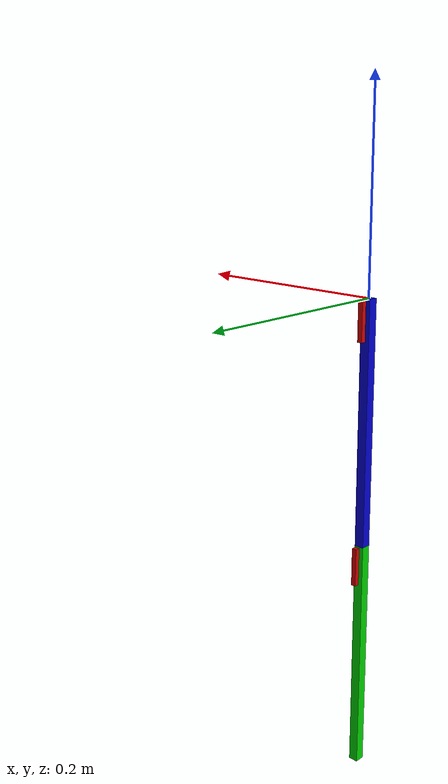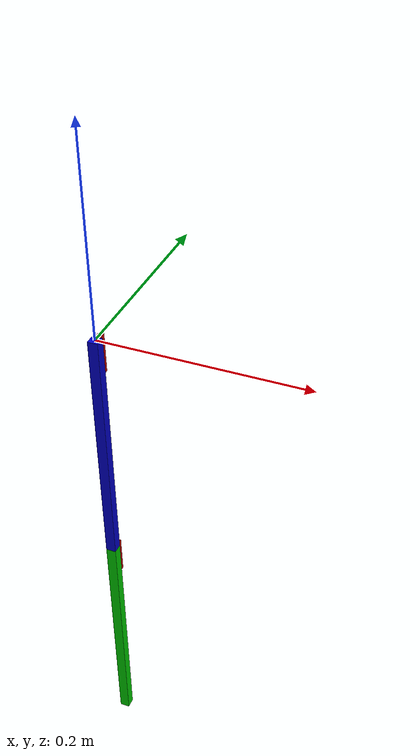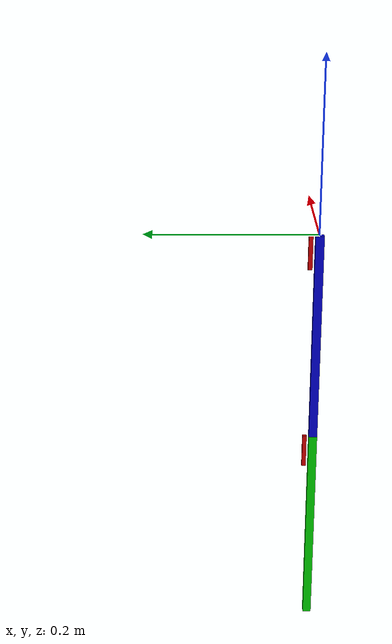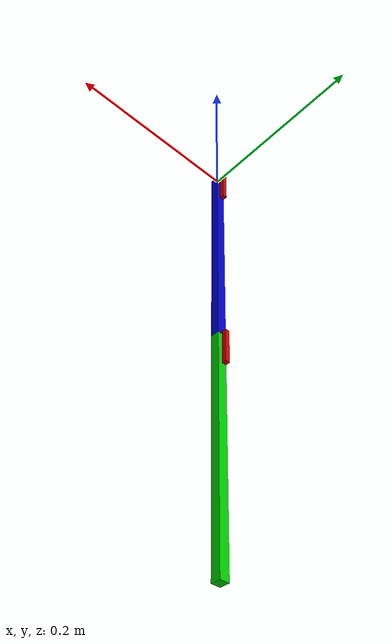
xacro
<?xml version="1.0"?>
<robot name="maccepa" xmlns:xacro="http://www.ros.org/wiki/xacro">

  <xacro:include filename="$(find maccepa_description)/urdf/materials.xacro" />
  <xacro:include filename="$(find maccepa_description)/urdf/link/maccepa_link.urdf.xacro"/>
  <xacro:include filename="$(find maccepa_description)/urdf/camdisk/maccepa_camdisk.urdf.xacro"/>
  <xacro:include filename="$(find maccepa_description)/gazebo/gazebo.urdf.xacro"/>

  <xacro:property name="link_length" value="0.25"/>
  <xacro:property name="link_mass" value="1"/><!-- [kg] -->
  <xacro:property name="camdisk_length" value="0.04"/>

  <link name="world"/>

  <!-- Dummy link holding robot base coordinate frame -->
  <link name="base">
    <inertial>
      <origin xyz="0 0 0" rpy="0 0 0"/>
      <mass value="1"/>
      <inertia ixx="0" ixy="0" ixz="0" iyy="0" iyz="0" izz="0"/>
    </inertial>
  </link>
  <joint name="world_to_base" type="fixed">
    <parent link="world"/>
    <child link="base"/>
    <origin xyz="0 0 0 " rpy="0 ${pi/2} 0" />
  </joint>

  <!-- First Link -->
  <maccepa_link name="arm" length="${link_length}" mass="${link_mass}" material="blue"/>
  <gazebo_blue reference="arm"/>
  <joint name="shoulder" type="revolute">
    <parent link="base"/>
    <child link="arm" />
    <limit
        lower="-10"
        upper="10"
        effort="1000"
        velocity="1000" />
    <origin xyz="0 0 0 " rpy="0 0 0" />
    <axis xyz="0 1 0" />
  </joint>

  <!-- Second Link -->
  <maccepa_link name="forearm" length="${link_length}" mass="${link_mass}" material="green"/>
  <gazebo_red reference="forearm"/>
  <joint name="elbow" type="revolute">
    <parent link="arm"/>
    <child link="forearm" />
    <limit
      lower="-10"
      upper="10"
      effort="1000"
      velocity="1000" />
    <origin xyz="0.25 0 0 " rpy="0 0 0" />
    <axis xyz="0 1 0" />
  </joint>

  <!-- Motors output shaft (visual only) -->
  <!-- First motor -->
  <maccepa_camdisk name="shoulder_motor" length="${camdisk_length}" material="red"/>
  <gazebo_yellow reference="shoulder_motor"/>
  <joint name="shoulder_motor_joint" type="revolute">
    <parent link="base"/>
    <child link="shoulder_motor" />
    <limit
        lower="-10"
        upper="10"
        effort="1000"
        velocity="1000" />
    <origin xyz="0 0.01 0 " rpy="0 0 0" />
    <axis xyz="0 1 0" />
  </joint>

  <!-- Second motor -->
  <maccepa_camdisk name="elbow_motor" length="${camdisk_length}" material="red"/>
  <gazebo_yellow reference="elbow_motor"/>
  <joint name="elbow_motor_joint" type="revolute">
    <parent link="arm"/>
    <child link="elbow_motor" />
    <limit
        lower="-10"
        upper="10"
        effort="1000"
        velocity="1000" />
    <origin xyz="0.25 0.01 0 " rpy="0 0 0" />
    <axis xyz="0 1 0" />
  </joint>

</robot>

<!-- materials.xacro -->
<robot xmlns:xacro="http://www.ros.org/wiki/xacro">

    <!-- Materials for sdf fallback (not used by Gazebo) -->
    <material name="blue">
        <color rgba="0.0 0.0 0.8 1.0"/>
    </material>

    <material name="green">
        <color rgba="0.0 0.8 0.0 1.0"/>
    </material>

    <material name="red">
        <color rgba="0.8 0.0 0.0 1.0"/>
    </material>

    <!-- Gazebo light emitting materials -->
    <xacro:macro name="gazebo_emissive_color" params="rgba reference">
        <gazebo reference="${reference}">
            <visual>
                <material>
                    <ambient>${rgba}</ambient>
                    <diffuse>${rgba}</diffuse>
                    <specular>0 0 0 0</specular>
                    <emissive>${rgba}</emissive>
                </material>
            </visual>
        </gazebo>
    </xacro:macro>

    <xacro:macro name="gazebo_green" params="reference">
        <gazebo_emissive_color reference="${reference}" rgba="0.0 1.0 0.0 1"/>
    </xacro:macro>

    <xacro:macro name="gazebo_blue" params="reference">
        <gazebo_emissive_color reference="${reference}" rgba="0.0 0.0 1.0 1"/>
    </xacro:macro>

    <xacro:macro name="gazebo_red" params="reference">
        <gazebo_emissive_color reference="${reference}" rgba="1.0 0.0 0.0 1"/>
    </xacro:macro>

    <xacro:macro name="gazebo_yellow" params="reference">
        <gazebo_emissive_color reference="${reference}" rgba="1.0 1.0 0.0 1"/>
    </xacro:macro>

</robot>

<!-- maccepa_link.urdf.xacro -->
<robot name="maccepa" xmlns:xacro="http://www.ros.org/wiki/xacro">

  <xacro:macro name="maccepa_link" params="name length mass material">

    <!-- slender rod along x-axis of length L and mass M -->
    <link name="${name}">
      <inertial>
        <origin xyz="${length/2} 0 0" rpy="0 0 0"/>
        <mass value="${mass}"/>
        <inertia ixx="0" ixy="0" ixz="0" iyy="${mass*length*length/12}" iyz="0" izz="${mass*length*length/12}"/>
      </inertial>

      <visual>
        <origin xyz="${length/2} 0 0" rpy="0 0 0"/>
        <geometry>
          <box size="${length} 0.01 0.01"/>
        </geometry>
        <material name="${material}"/>
      </visual>

      <!-- no collision -->

    </link>
  </xacro:macro>

</robot>

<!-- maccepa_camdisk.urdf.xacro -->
<robot name="maccepa" xmlns:xacro="http://www.ros.org/wiki/xacro">

  <xacro:macro name="maccepa_camdisk" params="name length material">

    <!-- massless (almost) visual bar -->
    <link name="${name}">

      <inertial>
        <origin xyz="${length/2} 0 0" rpy="0 0 0"/>
        <mass value="0.001"/>
        <inertia ixx="0" ixy="0" ixz="0" iyy="0" iyz="0" izz="0"/>
      </inertial>

      <visual>
        <origin xyz="${length/2} 0 0" rpy="0 0 0"/>
        <geometry>
          <box size="${length} 0.005 0.005"/>
        </geometry>
        <material name="${material}"/>
      </visual>

      <!-- no collision -->

    </link>
  </xacro:macro>

</robot>
